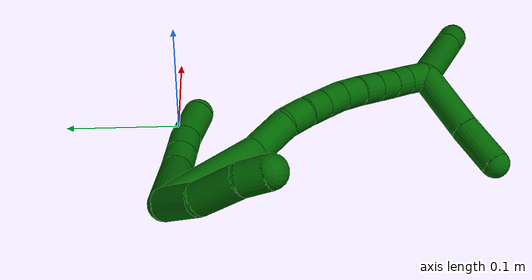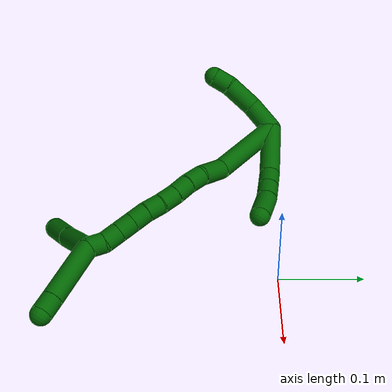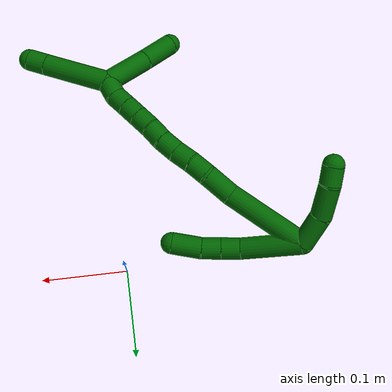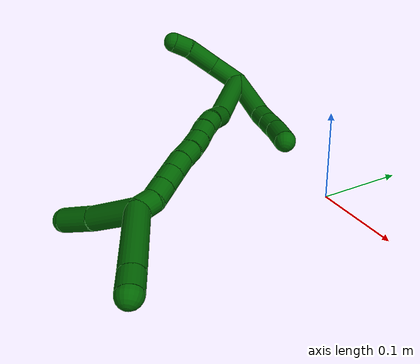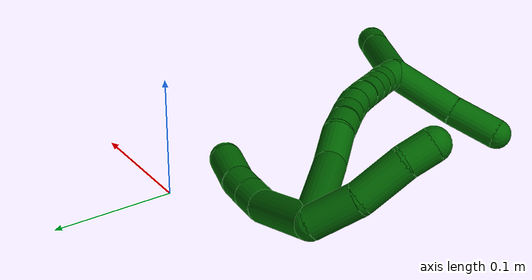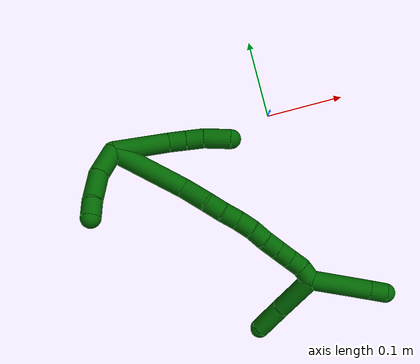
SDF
<sdf version="1.7">
 <world name="default">
  <model name="6">
   <static>0</static>
   <link name="6">
    <collision name="collision-cylinder-e_1_2_8">
     <pose>-0.01227 0.012133 0.030804 -0.375227 -0.35491 0.068068</pose>
     <geometry><cylinder><radius>0.0125</radius><length>0.070615</length></cylinder></geometry>
     <surface>
      <friction><ode><mu>1.16</mu><mu2>1.16</mu2><slip1>0</slip1><slip2>0</slip2></ode></friction>
      <contact><ode><kp>1e+06</kp><kd>1</kd><max_vel>0</max_vel><min_depth>0.001</min_depth></ode></contact>
     </surface>
    </collision>
    <visual name="visual-cylinder-e_1_2_8">
     <pose>-0.01227 0.012133 0.030804 -0.375227 -0.35491 0.068068</pose>
     <geometry><cylinder><radius>0.0125</radius><length>0.070615</length></cylinder></geometry>
     <material><ambient>0 0.392157 0.003922 1</ambient></material>
    </visual>
    <collision name="collision-cylinder-e_2_8_9">
     <pose>-0.030741 0.026585 0.070847 -0.245894 -0.57707 0.073323</pose>
     <geometry><cylinder><radius>0.0125</radius><length>0.022733</length></cylinder></geometry>
     <surface>
      <friction><ode><mu>1.16</mu><mu2>1.16</mu2><slip1>0</slip1><slip2>0</slip2></ode></friction>
      <contact><ode><kp>1e+06</kp><kd>1</kd><max_vel>0</max_vel><min_depth>0.001</min_depth></ode></contact>
     </surface>
    </collision>
    <visual name="visual-cylinder-e_2_8_9">
     <pose>-0.030741 0.026585 0.070847 -0.245894 -0.57707 0.073323</pose>
     <geometry><cylinder><radius>0.0125</radius><length>0.022733</length></cylinder></geometry>
     <material><ambient>0 0.392157 0.003922 1</ambient></material>
    </visual>
    <collision name="collision-cylinder-e_3_9_10">
     <pose>-0.04321 0.031012 0.089062 -0.230711 -0.597058 0.071282</pose>
     <geometry><cylinder><radius>0.0125</radius><length>0.022297</length></cylinder></geometry>
     <surface>
      <friction><ode><mu>1.16</mu><mu2>1.16</mu2><slip1>0</slip1><slip2>0</slip2></ode></friction>
      <contact><ode><kp>1e+06</kp><kd>1</kd><max_vel>0</max_vel><min_depth>0.001</min_depth></ode></contact>
     </surface>
    </collision>
    <visual name="visual-cylinder-e_3_9_10">
     <pose>-0.04321 0.031012 0.089062 -0.230711 -0.597058 0.071282</pose>
     <geometry><cylinder><radius>0.0125</radius><length>0.022297</length></cylinder></geometry>
     <material><ambient>0 0.392157 0.003922 1</ambient></material>
    </visual>
    <collision name="collision-cylinder-e_4_10_6">
     <pose>-0.059193 0.033603 0.112195 -0.034041 -0.601138 0.010552</pose>
     <geometry><cylinder><radius>0.0125</radius><length>0.034355</length></cylinder></geometry>
     <surface>
      <friction><ode><mu>1.16</mu><mu2>1.16</mu2><slip1>0</slip1><slip2>0</slip2></ode></friction>
      <contact><ode><kp>1e+06</kp><kd>1</kd><max_vel>0</max_vel><min_depth>0.001</min_depth></ode></contact>
     </surface>
    </collision>
    <visual name="visual-cylinder-e_4_10_6">
     <pose>-0.059193 0.033603 0.112195 -0.034041 -0.601138 0.010552</pose>
     <geometry><cylinder><radius>0.0125</radius><length>0.034355</length></cylinder></geometry>
     <material><ambient>0 0.392157 0.003922 1</ambient></material>
    </visual>
    <collision name="collision-cylinder-e_1_2_11">
     <pose>0.000779 -0.018193 -0.006751 1.92614 0.040124 0.05768</pose>
     <geometry><cylinder><radius>0.0125</radius><length>0.038841</length></cylinder></geometry>
     <surface>
      <friction><ode><mu>1.16</mu><mu2>1.16</mu2><slip1>0</slip1><slip2>0</slip2></ode></friction>
      <contact><ode><kp>1e+06</kp><kd>1</kd><max_vel>0</max_vel><min_depth>0.001</min_depth></ode></contact>
     </surface>
    </collision>
    <visual name="visual-cylinder-e_1_2_11">
     <pose>0.000779 -0.018193 -0.006751 1.92614 0.040124 0.05768</pose>
     <geometry><cylinder><radius>0.0125</radius><length>0.038841</length></cylinder></geometry>
     <material><ambient>0 0.392157 0.003922 1</ambient></material>
    </visual>
    <collision name="collision-cylinder-e_2_11_12">
     <pose>-0.001729 -0.05554 -0.016187 1.71002 -0.168314 -0.193397</pose>
     <geometry><cylinder><radius>0.0125</radius><length>0.039238</length></cylinder></geometry>
     <surface>
      <friction><ode><mu>1.16</mu><mu2>1.16</mu2><slip1>0</slip1><slip2>0</slip2></ode></friction>
      <contact><ode><kp>1e+06</kp><kd>1</kd><max_vel>0</max_vel><min_depth>0.001</min_depth></ode></contact>
     </surface>
    </collision>
    <visual name="visual-cylinder-e_2_11_12">
     <pose>-0.001729 -0.05554 -0.016187 1.71002 -0.168314 -0.193397</pose>
     <geometry><cylinder><radius>0.0125</radius><length>0.039238</length></cylinder></geometry>
     <material><ambient>0 0.392157 0.003922 1</ambient></material>
    </visual>
    <collision name="collision-cylinder-e_3_12_5">
     <pose>-0.005463 -0.08564 -0.018492 1.53624 -0.040839 -0.039452</pose>
     <geometry><cylinder><radius>0.0125</radius><length>0.02192</length></cylinder></geometry>
     <surface>
      <friction><ode><mu>1.16</mu><mu2>1.16</mu2><slip1>0</slip1><slip2>0</slip2></ode></friction>
      <contact><ode><kp>1e+06</kp><kd>1</kd><max_vel>0</max_vel><min_depth>0.001</min_depth></ode></contact>
     </surface>
    </collision>
    <visual name="visual-cylinder-e_3_12_5">
     <pose>-0.005463 -0.08564 -0.018492 1.53624 -0.040839 -0.039452</pose>
     <geometry><cylinder><radius>0.0125</radius><length>0.02192</length></cylinder></geometry>
     <material><ambient>0 0.392157 0.003922 1</ambient></material>
    </visual>
    <collision name="collision-cylinder-e_1_2_13">
     <pose>-0.013151 -0.015608 0.044469 0.337543 -0.27213 -0.046649</pose>
     <geometry><cylinder><radius>0.0125</radius><length>0.097859</length></cylinder></geometry>
     <surface>
      <friction><ode><mu>1.16</mu><mu2>1.16</mu2><slip1>0</slip1><slip2>0</slip2></ode></friction>
      <contact><ode><kp>1e+06</kp><kd>1</kd><max_vel>0</max_vel><min_depth>0.001</min_depth></ode></contact>
     </surface>
    </collision>
    <visual name="visual-cylinder-e_1_2_13">
     <pose>-0.013151 -0.015608 0.044469 0.337543 -0.27213 -0.046649</pose>
     <geometry><cylinder><radius>0.0125</radius><length>0.097859</length></cylinder></geometry>
     <material><ambient>0 0.392157 0.003922 1</ambient></material>
    </visual>
    <collision name="collision-cylinder-e_2_13_14">
     <pose>-0.035034 -0.039977 0.101579 0.606122 -0.516335 -0.164766</pose>
     <geometry><cylinder><radius>0.0125</radius><length>0.03537</length></cylinder></geometry>
     <surface>
      <friction><ode><mu>1.16</mu><mu2>1.16</mu2><slip1>0</slip1><slip2>0</slip2></ode></friction>
      <contact><ode><kp>1e+06</kp><kd>1</kd><max_vel>0</max_vel><min_depth>0.001</min_depth></ode></contact>
     </surface>
    </collision>
    <visual name="visual-cylinder-e_2_13_14">
     <pose>-0.035034 -0.039977 0.101579 0.606122 -0.516335 -0.164766</pose>
     <geometry><cylinder><radius>0.0125</radius><length>0.03537</length></cylinder></geometry>
     <material><ambient>0 0.392157 0.003922 1</ambient></material>
    </visual>
    <collision name="collision-cylinder-e_3_14_15">
     <pose>-0.046804 -0.053282 0.123933 0.437517 -0.276108 -0.061757</pose>
     <geometry><cylinder><radius>0.0125</radius><length>0.022292</length></cylinder></geometry>
     <surface>
      <friction><ode><mu>1.16</mu><mu2>1.16</mu2><slip1>0</slip1><slip2>0</slip2></ode></friction>
      <contact><ode><kp>1e+06</kp><kd>1</kd><max_vel>0</max_vel><min_depth>0.001</min_depth></ode></contact>
     </surface>
    </collision>
    <visual name="visual-cylinder-e_3_14_15">
     <pose>-0.046804 -0.053282 0.123933 0.437517 -0.276108 -0.061757</pose>
     <geometry><cylinder><radius>0.0125</radius><length>0.022292</length></cylinder></geometry>
     <material><ambient>0 0.392157 0.003922 1</ambient></material>
    </visual>
    <collision name="collision-cylinder-e_4_15_16">
     <pose>-0.052086 -0.061187 0.143621 0.325033 -0.210007 -0.034557</pose>
     <geometry><cylinder><radius>0.0125</radius><length>0.021525</length></cylinder></geometry>
     <surface>
      <friction><ode><mu>1.16</mu><mu2>1.16</mu2><slip1>0</slip1><slip2>0</slip2></ode></friction>
      <contact><ode><kp>1e+06</kp><kd>1</kd><max_vel>0</max_vel><min_depth>0.001</min_depth></ode></contact>
     </surface>
    </collision>
    <visual name="visual-cylinder-e_4_15_16">
     <pose>-0.052086 -0.061187 0.143621 0.325033 -0.210007 -0.034557</pose>
     <geometry><cylinder><radius>0.0125</radius><length>0.021525</length></cylinder></geometry>
     <material><ambient>0 0.392157 0.003922 1</ambient></material>
    </visual>
    <collision name="collision-cylinder-e_5_16_17">
     <pose>-0.056683 -0.068906 0.163383 0.418847 -0.216213 -0.046126</pose>
     <geometry><cylinder><radius>0.0125</radius><length>0.021936</length></cylinder></geometry>
     <surface>
      <friction><ode><mu>1.16</mu><mu2>1.16</mu2><slip1>0</slip1><slip2>0</slip2></ode></friction>
      <contact><ode><kp>1e+06</kp><kd>1</kd><max_vel>0</max_vel><min_depth>0.001</min_depth></ode></contact>
     </surface>
    </collision>
    <visual name="visual-cylinder-e_5_16_17">
     <pose>-0.056683 -0.068906 0.163383 0.418847 -0.216213 -0.046126</pose>
     <geometry><cylinder><radius>0.0125</radius><length>0.021936</length></cylinder></geometry>
     <material><ambient>0 0.392157 0.003922 1</ambient></material>
    </visual>
    <collision name="collision-cylinder-e_6_17_18">
     <pose>-0.060113 -0.078165 0.182077 0.503182 -0.105573 -0.02716</pose>
     <geometry><cylinder><radius>0.0125</radius><length>0.020448</length></cylinder></geometry>
     <surface>
      <friction><ode><mu>1.16</mu><mu2>1.16</mu2><slip1>0</slip1><slip2>0</slip2></ode></friction>
      <contact><ode><kp>1e+06</kp><kd>1</kd><max_vel>0</max_vel><min_depth>0.001</min_depth></ode></contact>
     </surface>
    </collision>
    <visual name="visual-cylinder-e_6_17_18">
     <pose>-0.060113 -0.078165 0.182077 0.503182 -0.105573 -0.02716</pose>
     <geometry><cylinder><radius>0.0125</radius><length>0.020448</length></cylinder></geometry>
     <material><ambient>0 0.392157 0.003922 1</ambient></material>
    </visual>
    <collision name="collision-cylinder-e_7_18_19">
     <pose>-0.061831 -0.086943 0.200477 0.38757 -0.062383 -0.012246</pose>
     <geometry><cylinder><radius>0.0125</radius><length>0.020547</length></cylinder></geometry>
     <surface>
      <friction><ode><mu>1.16</mu><mu2>1.16</mu2><slip1>0</slip1><slip2>0</slip2></ode></friction>
      <contact><ode><kp>1e+06</kp><kd>1</kd><max_vel>0</max_vel><min_depth>0.001</min_depth></ode></contact>
     </surface>
    </collision>
    <visual name="visual-cylinder-e_7_18_19">
     <pose>-0.061831 -0.086943 0.200477 0.38757 -0.062383 -0.012246</pose>
     <geometry><cylinder><radius>0.0125</radius><length>0.020547</length></cylinder></geometry>
     <material><ambient>0 0.392157 0.003922 1</ambient></material>
    </visual>
    <collision name="collision-cylinder-e_8_19_20">
     <pose>-0.063083 -0.094591 0.219217 0.387332 -0.061189 -0.012004</pose>
     <geometry><cylinder><radius>0.0125</radius><length>0.020011</length></cylinder></geometry>
     <surface>
      <friction><ode><mu>1.16</mu><mu2>1.16</mu2><slip1>0</slip1><slip2>0</slip2></ode></friction>
      <contact><ode><kp>1e+06</kp><kd>1</kd><max_vel>0</max_vel><min_depth>0.001</min_depth></ode></contact>
     </surface>
    </collision>
    <visual name="visual-cylinder-e_8_19_20">
     <pose>-0.063083 -0.094591 0.219217 0.387332 -0.061189 -0.012004</pose>
     <geometry><cylinder><radius>0.0125</radius><length>0.020011</length></cylinder></geometry>
     <material><ambient>0 0.392157 0.003922 1</ambient></material>
    </visual>
    <collision name="collision-cylinder-e_9_20_21">
     <pose>-0.064512 -0.10211 0.237701 0.385412 -0.081758 -0.015962</pose>
     <geometry><cylinder><radius>0.0125</radius><length>0.020003</length></cylinder></geometry>
     <surface>
      <friction><ode><mu>1.16</mu><mu2>1.16</mu2><slip1>0</slip1><slip2>0</slip2></ode></friction>
      <contact><ode><kp>1e+06</kp><kd>1</kd><max_vel>0</max_vel><min_depth>0.001</min_depth></ode></contact>
     </surface>
    </collision>
    <visual name="visual-cylinder-e_9_20_21">
     <pose>-0.064512 -0.10211 0.237701 0.385412 -0.081758 -0.015962</pose>
     <geometry><cylinder><radius>0.0125</radius><length>0.020003</length></cylinder></geometry>
     <material><ambient>0 0.392157 0.003922 1</ambient></material>
    </visual>
    <collision name="collision-cylinder-e_10_21_1">
     <pose>-0.065617 -0.112483 0.254428 0.72421 -0.028861 -0.010934</pose>
     <geometry><cylinder><radius>0.0125</radius><length>0.020008</length></cylinder></geometry>
     <surface>
      <friction><ode><mu>1.16</mu><mu2>1.16</mu2><slip1>0</slip1><slip2>0</slip2></ode></friction>
      <contact><ode><kp>1e+06</kp><kd>1</kd><max_vel>0</max_vel><min_depth>0.001</min_depth></ode></contact>
     </surface>
    </collision>
    <visual name="visual-cylinder-e_10_21_1">
     <pose>-0.065617 -0.112483 0.254428 0.72421 -0.028861 -0.010934</pose>
     <geometry><cylinder><radius>0.0125</radius><length>0.020008</length></cylinder></geometry>
     <material><ambient>0 0.392157 0.003922 1</ambient></material>
    </visual>
    <collision name="collision-cylinder-e_1_1_22">
     <pose>-0.040056 -0.13257 0.258423 1.82477 1.07719 1.31541</pose>
     <geometry><cylinder><radius>0.0125</radius><length>0.058708</length></cylinder></geometry>
     <surface>
      <friction><ode><mu>1.16</mu><mu2>1.16</mu2><slip1>0</slip1><slip2>0</slip2></ode></friction>
      <contact><ode><kp>1e+06</kp><kd>1</kd><max_vel>0</max_vel><min_depth>0.001</min_depth></ode></contact>
     </surface>
    </collision>
    <visual name="visual-cylinder-e_1_1_22">
     <pose>-0.040056 -0.13257 0.258423 1.82477 1.07719 1.31541</pose>
     <geometry><cylinder><radius>0.0125</radius><length>0.058708</length></cylinder></geometry>
     <material><ambient>0 0.392157 0.003922 1</ambient></material>
    </visual>
    <collision name="collision-cylinder-e_2_22_4">
     <pose>0.003142 -0.156658 0.251407 1.89087 0.997743 1.29286</pose>
     <geometry><cylinder><radius>0.0125</radius><length>0.041292</length></cylinder></geometry>
     <surface>
      <friction><ode><mu>1.16</mu><mu2>1.16</mu2><slip1>0</slip1><slip2>0</slip2></ode></friction>
      <contact><ode><kp>1e+06</kp><kd>1</kd><max_vel>0</max_vel><min_depth>0.001</min_depth></ode></contact>
     </surface>
    </collision>
    <visual name="visual-cylinder-e_2_22_4">
     <pose>0.003142 -0.156658 0.251407 1.89087 0.997743 1.29286</pose>
     <geometry><cylinder><radius>0.0125</radius><length>0.041292</length></cylinder></geometry>
     <material><ambient>0 0.392157 0.003922 1</ambient></material>
    </visual>
    <collision name="collision-cylinder-e_1_1_23">
     <pose>-0.080497 -0.120625 0.297971 0.042038 -0.384247 -0.008178</pose>
     <geometry><cylinder><radius>0.0125</radius><length>0.077846</length></cylinder></geometry>
     <surface>
      <friction><ode><mu>1.16</mu><mu2>1.16</mu2><slip1>0</slip1><slip2>0</slip2></ode></friction>
      <contact><ode><kp>1e+06</kp><kd>1</kd><max_vel>0</max_vel><min_depth>0.001</min_depth></ode></contact>
     </surface>
    </collision>
    <visual name="visual-cylinder-e_1_1_23">
     <pose>-0.080497 -0.120625 0.297971 0.042038 -0.384247 -0.008178</pose>
     <geometry><cylinder><radius>0.0125</radius><length>0.077846</length></cylinder></geometry>
     <material><ambient>0 0.392157 0.003922 1</ambient></material>
    </visual>
    <collision name="collision-cylinder-e_2_23_3">
     <pose>-0.099319 -0.122694 0.344245 0.054065 -0.391947 -0.010735</pose>
     <geometry><cylinder><radius>0.0125</radius><length>0.022154</length></cylinder></geometry>
     <surface>
      <friction><ode><mu>1.16</mu><mu2>1.16</mu2><slip1>0</slip1><slip2>0</slip2></ode></friction>
      <contact><ode><kp>1e+06</kp><kd>1</kd><max_vel>0</max_vel><min_depth>0.001</min_depth></ode></contact>
     </surface>
    </collision>
    <visual name="visual-cylinder-e_2_23_3">
     <pose>-0.099319 -0.122694 0.344245 0.054065 -0.391947 -0.010735</pose>
     <geometry><cylinder><radius>0.0125</radius><length>0.022154</length></cylinder></geometry>
     <material><ambient>0 0.392157 0.003922 1</ambient></material>
    </visual>
    <collision name="collision-sphere-3">
     <pose>-0.10355 -0.123248 0.354467 0 -0 0</pose>
     <geometry><sphere><radius>0.0125</radius></sphere></geometry>
     <surface>
      <friction><ode><mu>1.16</mu><mu2>1.16</mu2><slip1>0</slip1><slip2>0</slip2></ode></friction>
      <contact><ode><kp>1e+06</kp><kd>1</kd><max_vel>0</max_vel><min_depth>0.001</min_depth></ode></contact>
     </surface>
    </collision>
    <visual name="visual-sphere-3">
     <pose>-0.10355 -0.123248 0.354467 0 -0 0</pose>
     <geometry><sphere><radius>0.0125</radius></sphere></geometry>
     <material><ambient>0 0.392157 0.003922 1</ambient></material>
    </visual>
    <collision name="collision-sphere-23">
     <pose>-0.095087 -0.122141 0.334023 0 -0 0</pose>
     <geometry><sphere><radius>0.0125</radius></sphere></geometry>
     <surface>
      <friction><ode><mu>1.16</mu><mu2>1.16</mu2><slip1>0</slip1><slip2>0</slip2></ode></friction>
      <contact><ode><kp>1e+06</kp><kd>1</kd><max_vel>0</max_vel><min_depth>0.001</min_depth></ode></contact>
     </surface>
    </collision>
    <visual name="visual-sphere-23">
     <pose>-0.095087 -0.122141 0.334023 0 -0 0</pose>
     <geometry><sphere><radius>0.0125</radius></sphere></geometry>
     <material><ambient>0 0.392157 0.003922 1</ambient></material>
    </visual>
    <collision name="collision-sphere-4">
     <pose>0.02049 -0.167284 0.247884 0 -0 0</pose>
     <geometry><sphere><radius>0.0125</radius></sphere></geometry>
     <surface>
      <friction><ode><mu>1.16</mu><mu2>1.16</mu2><slip1>0</slip1><slip2>0</slip2></ode></friction>
      <contact><ode><kp>1e+06</kp><kd>1</kd><max_vel>0</max_vel><min_depth>0.001</min_depth></ode></contact>
     </surface>
    </collision>
    <visual name="visual-sphere-4">
     <pose>0.02049 -0.167284 0.247884 0 -0 0</pose>
     <geometry><sphere><radius>0.0125</radius></sphere></geometry>
     <material><ambient>0 0.392157 0.003922 1</ambient></material>
    </visual>
    <collision name="collision-sphere-22">
     <pose>-0.014206 -0.146032 0.254929 0 -0 0</pose>
     <geometry><sphere><radius>0.0125</radius></sphere></geometry>
     <surface>
      <friction><ode><mu>1.16</mu><mu2>1.16</mu2><slip1>0</slip1><slip2>0</slip2></ode></friction>
      <contact><ode><kp>1e+06</kp><kd>1</kd><max_vel>0</max_vel><min_depth>0.001</min_depth></ode></contact>
     </surface>
    </collision>
    <visual name="visual-sphere-22">
     <pose>-0.014206 -0.146032 0.254929 0 -0 0</pose>
     <geometry><sphere><radius>0.0125</radius></sphere></geometry>
     <material><ambient>0 0.392157 0.003922 1</ambient></material>
    </visual>
    <collision name="collision-sphere-1">
     <pose>-0.065906 -0.119108 0.261918 0 -0 0</pose>
     <geometry><sphere><radius>0.0125</radius></sphere></geometry>
     <surface>
      <friction><ode><mu>1.16</mu><mu2>1.16</mu2><slip1>0</slip1><slip2>0</slip2></ode></friction>
      <contact><ode><kp>1e+06</kp><kd>1</kd><max_vel>0</max_vel><min_depth>0.001</min_depth></ode></contact>
     </surface>
    </collision>
    <visual name="visual-sphere-1">
     <pose>-0.065906 -0.119108 0.261918 0 -0 0</pose>
     <geometry><sphere><radius>0.0125</radius></sphere></geometry>
     <material><ambient>0 0.392157 0.003922 1</ambient></material>
    </visual>
    <collision name="collision-sphere-21">
     <pose>-0.065329 -0.105858 0.246937 0 -0 0</pose>
     <geometry><sphere><radius>0.0125</radius></sphere></geometry>
     <surface>
      <friction><ode><mu>1.16</mu><mu2>1.16</mu2><slip1>0</slip1><slip2>0</slip2></ode></friction>
      <contact><ode><kp>1e+06</kp><kd>1</kd><max_vel>0</max_vel><min_depth>0.001</min_depth></ode></contact>
     </surface>
    </collision>
    <visual name="visual-sphere-21">
     <pose>-0.065329 -0.105858 0.246937 0 -0 0</pose>
     <geometry><sphere><radius>0.0125</radius></sphere></geometry>
     <material><ambient>0 0.392157 0.003922 1</ambient></material>
    </visual>
    <collision name="collision-sphere-11">
     <pose>0.001558 -0.036385 -0.013503 0 -0 0</pose>
     <geometry><sphere><radius>0.0125</radius></sphere></geometry>
     <surface>
      <friction><ode><mu>1.16</mu><mu2>1.16</mu2><slip1>0</slip1><slip2>0</slip2></ode></friction>
      <contact><ode><kp>1e+06</kp><kd>1</kd><max_vel>0</max_vel><min_depth>0.001</min_depth></ode></contact>
     </surface>
    </collision>
    <visual name="visual-sphere-11">
     <pose>0.001558 -0.036385 -0.013503 0 -0 0</pose>
     <geometry><sphere><radius>0.0125</radius></sphere></geometry>
     <material><ambient>0 0.392157 0.003922 1</ambient></material>
    </visual>
    <collision name="collision-sphere-6">
     <pose>-0.068908 0.034085 0.126353 0 -0 0</pose>
     <geometry><sphere><radius>0.0125</radius></sphere></geometry>
     <surface>
      <friction><ode><mu>1.16</mu><mu2>1.16</mu2><slip1>0</slip1><slip2>0</slip2></ode></friction>
      <contact><ode><kp>1e+06</kp><kd>1</kd><max_vel>0</max_vel><min_depth>0.001</min_depth></ode></contact>
     </surface>
    </collision>
    <visual name="visual-sphere-6">
     <pose>-0.068908 0.034085 0.126353 0 -0 0</pose>
     <geometry><sphere><radius>0.0125</radius></sphere></geometry>
     <material><ambient>0 0.392157 0.003922 1</ambient></material>
    </visual>
    <collision name="collision-sphere-10">
     <pose>-0.049477 0.033121 0.098037 0 -0 0</pose>
     <geometry><sphere><radius>0.0125</radius></sphere></geometry>
     <surface>
      <friction><ode><mu>1.16</mu><mu2>1.16</mu2><slip1>0</slip1><slip2>0</slip2></ode></friction>
      <contact><ode><kp>1e+06</kp><kd>1</kd><max_vel>0</max_vel><min_depth>0.001</min_depth></ode></contact>
     </surface>
    </collision>
    <visual name="visual-sphere-10">
     <pose>-0.049477 0.033121 0.098037 0 -0 0</pose>
     <geometry><sphere><radius>0.0125</radius></sphere></geometry>
     <material><ambient>0 0.392157 0.003922 1</ambient></material>
    </visual>
    <collision name="collision-sphere-9">
     <pose>-0.036942 0.028904 0.080086 0 -0 0</pose>
     <geometry><sphere><radius>0.0125</radius></sphere></geometry>
     <surface>
      <friction><ode><mu>1.16</mu><mu2>1.16</mu2><slip1>0</slip1><slip2>0</slip2></ode></friction>
      <contact><ode><kp>1e+06</kp><kd>1</kd><max_vel>0</max_vel><min_depth>0.001</min_depth></ode></contact>
     </surface>
    </collision>
    <visual name="visual-sphere-9">
     <pose>-0.036942 0.028904 0.080086 0 -0 0</pose>
     <geometry><sphere><radius>0.0125</radius></sphere></geometry>
     <material><ambient>0 0.392157 0.003922 1</ambient></material>
    </visual>
    <collision name="collision-sphere-2">
     <geometry><sphere><radius>0.0125</radius></sphere></geometry>
     <surface>
      <friction><ode><mu>1.16</mu><mu2>1.16</mu2><slip1>0</slip1><slip2>0</slip2></ode></friction>
      <contact><ode><kp>1e+06</kp><kd>1</kd><max_vel>0</max_vel><min_depth>0.001</min_depth></ode></contact>
     </surface>
    </collision>
    <visual name="visual-sphere-2">
     <geometry><sphere><radius>0.0125</radius></sphere></geometry>
     <material><ambient>0 0.392157 0.003922 1</ambient></material>
    </visual>
    <collision name="collision-sphere-19">
     <pose>-0.062471 -0.090818 0.209969 0 -0 0</pose>
     <geometry><sphere><radius>0.0125</radius></sphere></geometry>
     <surface>
      <friction><ode><mu>1.16</mu><mu2>1.16</mu2><slip1>0</slip1><slip2>0</slip2></ode></friction>
      <contact><ode><kp>1e+06</kp><kd>1</kd><max_vel>0</max_vel><min_depth>0.001</min_depth></ode></contact>
     </surface>
    </collision>
    <visual name="visual-sphere-19">
     <pose>-0.062471 -0.090818 0.209969 0 -0 0</pose>
     <geometry><sphere><radius>0.0125</radius></sphere></geometry>
     <material><ambient>0 0.392157 0.003922 1</ambient></material>
    </visual>
    <collision name="collision-sphere-8">
     <pose>-0.024539 0.024266 0.061607 0 -0 0</pose>
     <geometry><sphere><radius>0.0125</radius></sphere></geometry>
     <surface>
      <friction><ode><mu>1.16</mu><mu2>1.16</mu2><slip1>0</slip1><slip2>0</slip2></ode></friction>
      <contact><ode><kp>1e+06</kp><kd>1</kd><max_vel>0</max_vel><min_depth>0.001</min_depth></ode></contact>
     </surface>
    </collision>
    <visual name="visual-sphere-8">
     <pose>-0.024539 0.024266 0.061607 0 -0 0</pose>
     <geometry><sphere><radius>0.0125</radius></sphere></geometry>
     <material><ambient>0 0.392157 0.003922 1</ambient></material>
    </visual>
    <collision name="collision-sphere-12">
     <pose>-0.005015 -0.074695 -0.018871 0 -0 0</pose>
     <geometry><sphere><radius>0.0125</radius></sphere></geometry>
     <surface>
      <friction><ode><mu>1.16</mu><mu2>1.16</mu2><slip1>0</slip1><slip2>0</slip2></ode></friction>
      <contact><ode><kp>1e+06</kp><kd>1</kd><max_vel>0</max_vel><min_depth>0.001</min_depth></ode></contact>
     </surface>
    </collision>
    <visual name="visual-sphere-12">
     <pose>-0.005015 -0.074695 -0.018871 0 -0 0</pose>
     <geometry><sphere><radius>0.0125</radius></sphere></geometry>
     <material><ambient>0 0.392157 0.003922 1</ambient></material>
    </visual>
    <collision name="collision-sphere-5">
     <pose>-0.00591 -0.096584 -0.018114 0 -0 0</pose>
     <geometry><sphere><radius>0.0125</radius></sphere></geometry>
     <surface>
      <friction><ode><mu>1.16</mu><mu2>1.16</mu2><slip1>0</slip1><slip2>0</slip2></ode></friction>
      <contact><ode><kp>1e+06</kp><kd>1</kd><max_vel>0</max_vel><min_depth>0.001</min_depth></ode></contact>
     </surface>
    </collision>
    <visual name="visual-sphere-5">
     <pose>-0.00591 -0.096584 -0.018114 0 -0 0</pose>
     <geometry><sphere><radius>0.0125</radius></sphere></geometry>
     <material><ambient>0 0.392157 0.003922 1</ambient></material>
    </visual>
    <collision name="collision-sphere-13">
     <pose>-0.026303 -0.031215 0.088939 0 -0 0</pose>
     <geometry><sphere><radius>0.0125</radius></sphere></geometry>
     <surface>
      <friction><ode><mu>1.16</mu><mu2>1.16</mu2><slip1>0</slip1><slip2>0</slip2></ode></friction>
      <contact><ode><kp>1e+06</kp><kd>1</kd><max_vel>0</max_vel><min_depth>0.001</min_depth></ode></contact>
     </surface>
    </collision>
    <visual name="visual-sphere-13">
     <pose>-0.026303 -0.031215 0.088939 0 -0 0</pose>
     <geometry><sphere><radius>0.0125</radius></sphere></geometry>
     <material><ambient>0 0.392157 0.003922 1</ambient></material>
    </visual>
    <collision name="collision-sphere-14">
     <pose>-0.043765 -0.048738 0.114219 0 -0 0</pose>
     <geometry><sphere><radius>0.0125</radius></sphere></geometry>
     <surface>
      <friction><ode><mu>1.16</mu><mu2>1.16</mu2><slip1>0</slip1><slip2>0</slip2></ode></friction>
      <contact><ode><kp>1e+06</kp><kd>1</kd><max_vel>0</max_vel><min_depth>0.001</min_depth></ode></contact>
     </surface>
    </collision>
    <visual name="visual-sphere-14">
     <pose>-0.043765 -0.048738 0.114219 0 -0 0</pose>
     <geometry><sphere><radius>0.0125</radius></sphere></geometry>
     <material><ambient>0 0.392157 0.003922 1</ambient></material>
    </visual>
    <collision name="collision-sphere-15">
     <pose>-0.049842 -0.057826 0.133646 0 -0 0</pose>
     <geometry><sphere><radius>0.0125</radius></sphere></geometry>
     <surface>
      <friction><ode><mu>1.16</mu><mu2>1.16</mu2><slip1>0</slip1><slip2>0</slip2></ode></friction>
      <contact><ode><kp>1e+06</kp><kd>1</kd><max_vel>0</max_vel><min_depth>0.001</min_depth></ode></contact>
     </surface>
    </collision>
    <visual name="visual-sphere-15">
     <pose>-0.049842 -0.057826 0.133646 0 -0 0</pose>
     <geometry><sphere><radius>0.0125</radius></sphere></geometry>
     <material><ambient>0 0.392157 0.003922 1</ambient></material>
    </visual>
    <collision name="collision-sphere-16">
     <pose>-0.05433 -0.064549 0.153597 0 -0 0</pose>
     <geometry><sphere><radius>0.0125</radius></sphere></geometry>
     <surface>
      <friction><ode><mu>1.16</mu><mu2>1.16</mu2><slip1>0</slip1><slip2>0</slip2></ode></friction>
      <contact><ode><kp>1e+06</kp><kd>1</kd><max_vel>0</max_vel><min_depth>0.001</min_depth></ode></contact>
     </surface>
    </collision>
    <visual name="visual-sphere-16">
     <pose>-0.05433 -0.064549 0.153597 0 -0 0</pose>
     <geometry><sphere><radius>0.0125</radius></sphere></geometry>
     <material><ambient>0 0.392157 0.003922 1</ambient></material>
    </visual>
    <collision name="collision-sphere-17">
     <pose>-0.059036 -0.073262 0.17317 0 -0 0</pose>
     <geometry><sphere><radius>0.0125</radius></sphere></geometry>
     <surface>
      <friction><ode><mu>1.16</mu><mu2>1.16</mu2><slip1>0</slip1><slip2>0</slip2></ode></friction>
      <contact><ode><kp>1e+06</kp><kd>1</kd><max_vel>0</max_vel><min_depth>0.001</min_depth></ode></contact>
     </surface>
    </collision>
    <visual name="visual-sphere-17">
     <pose>-0.059036 -0.073262 0.17317 0 -0 0</pose>
     <geometry><sphere><radius>0.0125</radius></sphere></geometry>
     <material><ambient>0 0.392157 0.003922 1</ambient></material>
    </visual>
    <collision name="collision-sphere-18">
     <pose>-0.06119 -0.083068 0.190984 0 -0 0</pose>
     <geometry><sphere><radius>0.0125</radius></sphere></geometry>
     <surface>
      <friction><ode><mu>1.16</mu><mu2>1.16</mu2><slip1>0</slip1><slip2>0</slip2></ode></friction>
      <contact><ode><kp>1e+06</kp><kd>1</kd><max_vel>0</max_vel><min_depth>0.001</min_depth></ode></contact>
     </surface>
    </collision>
    <visual name="visual-sphere-18">
     <pose>-0.06119 -0.083068 0.190984 0 -0 0</pose>
     <geometry><sphere><radius>0.0125</radius></sphere></geometry>
     <material><ambient>0 0.392157 0.003922 1</ambient></material>
    </visual>
    <collision name="collision-sphere-20">
     <pose>-0.063695 -0.098363 0.228464 0 -0 0</pose>
     <geometry><sphere><radius>0.0125</radius></sphere></geometry>
     <surface>
      <friction><ode><mu>1.16</mu><mu2>1.16</mu2><slip1>0</slip1><slip2>0</slip2></ode></friction>
      <contact><ode><kp>1e+06</kp><kd>1</kd><max_vel>0</max_vel><min_depth>0.001</min_depth></ode></contact>
     </surface>
    </collision>
    <visual name="visual-sphere-20">
     <pose>-0.063695 -0.098363 0.228464 0 -0 0</pose>
     <geometry><sphere><radius>0.0125</radius></sphere></geometry>
     <material><ambient>0 0.392157 0.003922 1</ambient></material>
    </visual>
    <inertial>
     <pose>-0.036943 -0.059126 0.138874 0 -0 0</pose>
     <mass>0.75</mass>
     <inertia>
      <ixx>0.000193</ixx>
      <ixy>0</ixy>
      <ixz>0</ixz>
      <iyy>0.000183</iyy>
      <iyz>0</iyz>
      <izz>0.000122</izz>
     </inertia>
    </inertial>
   </link>
   <pose>-0.199153 0.000535 0.076124 -2.41821 0.856254 -2.8731</pose>
  </model>
 </world>
</sdf>
